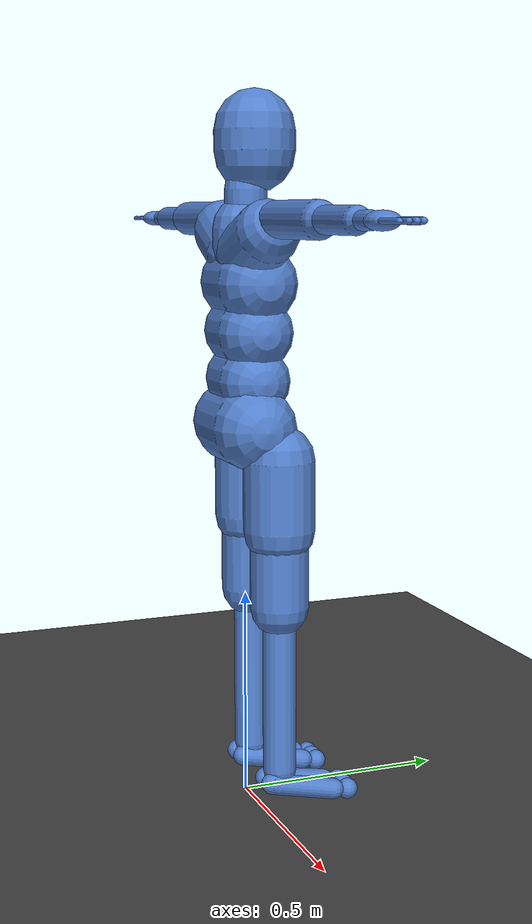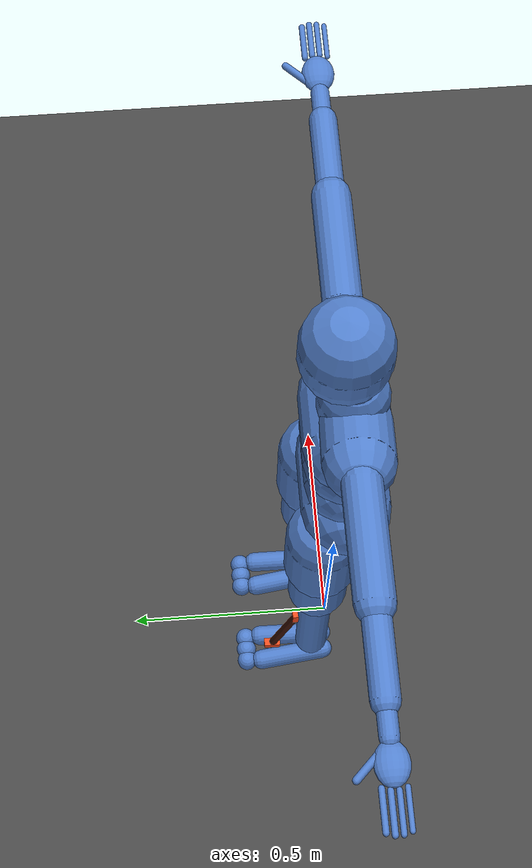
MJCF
<!--
The model definition MJCF file for the ankle exo challenge. This defines the humanoid, the actuators and sensors and
their names.
-->

<mujoco>
  <actuator>
    <motor name="exo"  gear="-50" ctrlrange="0 1" ctrllimited="true" tendon="exo"/>
    <motor name="param_1"  gear="0" ctrlrange="0 1" ctrllimited="true" tendon="exo" group="1"/>
    <motor name="param_2"  gear="0" ctrlrange="-0.5 1" ctrllimited="true" tendon="exo" group="1"/>
    <motor name="param_3"  gear="0" ctrlrange="0 1" ctrllimited="true" tendon="exo" group="1"/>
  </actuator>

  <!-- You can reserve space in the data structure for your own logic that will be passed along from frame
   to frame. By default we'll use it to keep track of the reward function and smooth it out. -->
  <size nuserdata="1" />

  <sensor>
    <accelerometer site="lfootIMU" noise="0" cutoff="0" name="lfootACC" />
    <accelerometer site="ltibiaIMU" noise="0" cutoff="0" name="ltibiaACC" />
    <gyro site="ltibiaIMU" noise="0" cutoff="0" name="ltibiaGYR" />
    <gyro site="lfootIMU" noise="0" cutoff="0" name="lfootGYR" />

    <!-- The contact force at the toes, we'll use this in our reward function to penalize tripping. -->
    <touch site="ltoesite" noise="0" cutoff="0" name="ltoeForce" />
  </sensor>

  <worldbody>
    <!-- The ankle joint is on the left side, called "lfootrx" -->
    <body pos="0 0 0.963" quat="-1 0 0 0" name="root">
      <body pos="0 0 0" quat="0 0 0.7071068 0.7071068" name="lhipjoint">
        <geom density="10" type="capsule" size="0.008000004 0.02187361" pos="0.05096853 -0.04590369 0.02472301" quat="0.5708001 -0.5666021 -0.5942641 0" priority="0" contype="0" conaffinity="0" group="2" condim="1" solmix="1" solref="0.015 1" solimp="0.99 0.99 0.003" margin="0" gap="0" friction="0.7 0.005 0.0001" name="lhipjoint" />
        <body pos="0.1019371 -0.09180744 0.04944616" quat="-1 0 0 0" name="lfemur">
          <joint type="ball" pos="0 0 0" armature="0.005" springref="0" springdamper="0 0" damping="20" stiffness="0" solreflimit="0.02 1" solimplimit="0.9 0.95 0.001 0.5 2" solreffriction="0.02 1" solimpfriction="0.9 0.95 0.001 0.5 2" frictionloss="0" limited="true" margin="0" range="0 137.51" name="lfemurr" />
          <geom density="0" type="capsule" size="0.08500003 0.083" pos="0 -0.115473 3.61172E-08" quat="0.6963643 -0.6963643 -0.1227881 -0.1227881" priority="0" contype="0" conaffinity="0" group="2" condim="1" solmix="1" solref="0.015 1" solimp="0.99 0.99 0.003" margin="0" gap="0" friction="0.7 0.005 0.0001" name="lfemur_upper" />
          <geom density="1000" type="capsule" size="0.07000002 0.182226" pos="0 -0.2024731 4.648841E-08" quat="0.6963643 -0.6963643 -0.1227881 -0.1227881" priority="0" contype="0" conaffinity="0" group="2" condim="1" solmix="1" solref="0.015 1" solimp="0.99 0.99 0.003" margin="0" gap="0" friction="0.7 0.005 0.0001" name="lfemur" />
          <body pos="0 -0.4049452 1.302296E-07" quat="-1 0 0 0" name="ltibia">
            <body name="tibiaIMU_body" pos="0 -0.194 0.04300001" quat="0 0 -0.7071069 -0.7071069">
                <joint type="slide" stiffness="1" damping="20" axis="1 0 0"/>
                <joint type="slide" stiffness="1" damping="20" axis="0 1 0"/>
                <joint type="slide" stiffness="1" damping="20" axis="0 0 1"/>
                <inertial mass="0.002" diaginertia="0.001 0.001 0.001" pos="0 0 0" />
                <site type="box" size="0.01 0.01000001 0.02000001"  rgba="1 0.3 0.12 0" name="ltibiaIMU" />
            </body>
            <site type="box" size="0.01000002 0.01000001 0.02000001" pos="0 -0.194 0.04300001" quat="0 0 -0.7071069 -0.7071069" rgba="1 0.3 0.12 1" name="ltibiaTendon" />
            <joint type="hinge" pos="0 0 0" axis="1 0 0" ref="0" armature="0.05" springref="0" springdamper="0 0" damping="40" stiffness="0" solreflimit="0.02 1" solimplimit="0 0.99 0.01 0.5 2" solreffriction="0.02 1" solimpfriction="0.9 0.95 0.001 0.5 2" frictionloss="0" limited="true" margin="0" range="0.5729578 170" name="ltibiarx" />
            <geom density="1000" type="capsule" size="0.04000001 0.182561" pos="0 -0.2028461 2.418113E-08" quat="0.6963643 -0.6963643 -0.1227881 -0.1227881" priority="0" contype="0" conaffinity="0" group="2" condim="1" solmix="1" solref="0.015 1" solimp="0.99 0.99 0.003" margin="0" gap="0" friction="0.7 0.005 0.0001" name="ltibia" />
            <body pos="0 -0.4156931 1.091591E-07" quat="0.7071069 -0.7071069 0 0" name="lfoot">
              <body name="footIMU_body" pos="0 -0.1 0.01" quat="0 0 -0.7071069 -0.7071069">
                <joint type="slide" stiffness="1" damping="20" axis="1 0 0"/>
                <joint type="slide" stiffness="1" damping="20" axis="0 1 0"/>
                <joint type="slide" stiffness="1" damping="20" axis="0 0 1"/>
                <inertial mass="0.001" diaginertia="0.001 0.001 0.001" pos="0 0 0" />
                <site type="box" size="0.01000002 0.01000001 0.02000001"  rgba="1 0.3 0.12 0" name="lfootIMU"  />
              </body>
              <site type="box" size="0.01000002 0.01000001 0.02000001"  rgba="1 0.3 0.12 1" pos="0 -0.1 0.01" quat="0 0 -0.7071069 -0.7071069" name="lfootTendon"  />
              <joint type="hinge" pos="0 0 0" axis="1 0 0" ref="0" armature="0.005" springref="30" springdamper="0 0" damping="0.2" stiffness="1.5" solreflimit="0.02 1" solimplimit="0 0.99 0.01 0.5 2" solreffriction="0.02 1" solimpfriction="0.9 0.95 0.001 0.5 2" frictionloss="0.2" limited="true" margin="0" range="-44.99999 30" name="lfootrx" />
              <geom density="1000" type="capsule" size="0.02500003 0.08000004" pos="-0.02700003 -0.04999997 -0.01138771" quat="0.7672563 -0.6405111 0.02306491 -0.02306581" priority="0" contype="1" conaffinity="1" group="2" condim="3" solmix="1" solref="0.1 1" solimp="0.98 0.98 0.002" margin="0" gap="0" friction="1 0.005 0.0001" name="lfoot" />
              <geom density="1000" type="capsule" size="0.02500003 0.08000004" pos="0.02700002 -0.04999997 -0.01138771" quat="0.7288731 -0.5939951 -0.240743 -0.240743" priority="0" contype="1" conaffinity="1" group="2" condim="3" solmix="1" solref="0.1 1" solimp="0.98 0.98 0.002" margin="0" gap="0" friction="1 0.005 0.0001" name="lfoot_ch" />
              <body pos="0 -0.1563721 -0.02277565" quat="-1 0 0 0" name="ltoes">

                <site type="sphere" size="0.07000005" pos="0 -0.03280033 5.960464E-08" quat="-1 0 0 0" name="ltoesite" rgba="0 0 0 0" />
                <joint type="hinge" pos="0 0 0" axis="1 0 0" ref="0" armature="0.005" springref="0" springdamper="0 0" damping="20" stiffness="0" solreflimit="0.02 1" solimplimit="0 0.99 0.01 0.5 2" solreffriction="0.02 1" solimpfriction="0.9 0.95 0.001 0.5 2" frictionloss="0" limited="true" margin="0" range="-90.00021 20.00001" name="ltoesrx" />
                <geom density="3000" type="sphere" size="0.02500002" pos="0 -0.009999995 -0.00999999" quat="-1 0 0 0" priority="30" contype="1" conaffinity="1" group="2" condim="6" solmix="1" solref="-300 -50" solimp="0.80 0.98 0.01" margin="0" gap="0" friction="1 0.005 0.0001" name="ltoes0" />
                <geom density="3000" type="sphere" size="0.02500002" pos="0.03000001 -0.009999995 -0.00999999" quat="-1 0 0 0" priority="30" contype="1" conaffinity="1" group="2" condim="6" solmix="1" solref="-300 -50" solimp="0.80 0.98 0.01" margin="0" gap="0" friction="1 0.005 0.0001" name="ltoes1" />
                <geom density="3000" type="sphere" size="0.02500002" pos="-0.03000003 -0.009999995 -0.00999999" quat="-1 0 0 0" priority="30" contype="1" conaffinity="1" group="2" condim="6" solmix="1" solref="-300 -50" solimp="0.80 0.98 0.01" margin="0" gap="0" friction="1 0.005 0.0001" name="ltoes2" />
              </body>
            </body>
          </body>
        </body>
      </body>
      <body pos="0 0 0" quat="0 0 0.7071068 0.7071068" name="rhipjoint">
        <geom density="10" type="capsule" size="0.008000002 0.02187361" pos="-0.05096853 -0.04590369 0.02472301" quat="0.5748562 -0.5475942 0.6080142 0" priority="0" contype="0" conaffinity="0" group="2" condim="1" solmix="1" solref="0.015 1" solimp="0.99 0.99 0.003" margin="0" gap="0" friction="0.7 0.005 0.0001" name="rhipjoint" />
        <body pos="-0.1019371 -0.09180744 0.04944613" quat="-1 0 0 0" name="rfemur">
          <joint type="ball" pos="0 0 0" armature="0.005" springref="0" springdamper="0 0" damping="20" stiffness="0" solreflimit="0.02 1" solimplimit="0.9 0.95 0.001 0.5 2" solreffriction="0.02 1" solimpfriction="0.9 0.95 0.001 0.5 2" frictionloss="0" limited="true" margin="0" range="0 137.51" name="rfemurr" />
          <geom density="0" type="capsule" size="0.08500003 0.083" pos="0 -0.115473 3.61172E-08" quat="0.6963643 -0.6963643 0.1227881 0.1227881" priority="0" contype="0" conaffinity="0" group="2" condim="1" solmix="1" solref="0.015 1" solimp="0.99 0.99 0.003" margin="0" gap="0" friction="0.7 0.005 0.0001" name="rfemur_upper" />
          <geom density="1000" type="capsule" size="0.07000002 0.182226" pos="0 -0.2024731 4.648841E-08" quat="0.6963643 -0.6963643 0.1227881 0.1227881" priority="0" contype="0" conaffinity="0" group="2" condim="1" solmix="1" solref="0.015 1" solimp="0.99 0.99 0.003" margin="0" gap="0" friction="0.7 0.005 0.0001" name="rfemur" />
          <body pos="0 -0.4049451 1.004273E-07" quat="-1 0 0 0" name="rtibia">
            <joint type="hinge" pos="0 0 0" axis="1 0 0" ref="0" armature="0.005" springref="0" springdamper="0 0" damping="20" stiffness="0" solreflimit="0.02 1" solimplimit="0 0.99 0.01 0.5 2" solreffriction="0.02 1" solimpfriction="0.9 0.95 0.001 0.5 2" frictionloss="0" limited="true" margin="0" range="0.5729578 170" name="rtibiarx" />
            <geom density="1000" type="capsule" size="0.04000001 0.182561" pos="0 -0.2028461 2.418113E-08" quat="0.6963643 -0.6963643 0.1227881 0.1227881" priority="0" contype="0" conaffinity="0" group="2" condim="1" solmix="1" solref="0.015 1" solimp="0.99 0.99 0.003" margin="0" gap="0" friction="0.7 0.005 0.0001" name="rtibia" />
            <body pos="0 -0.4156932 1.091591E-07" quat="0.7071069 -0.7071069 0 0" name="rfoot">
              <joint type="hinge" pos="0 0 0" axis="-4.768369E-07 0 1" ref="0" armature="0.005" springref="0" springdamper="0 0" damping="20" stiffness="0" solreflimit="0.02 1" solimplimit="0 0.99 0.01 0.5 2" solreffriction="0.02 1" solimpfriction="0.9 0.95 0.001 0.5 2" frictionloss="0" limited="true" margin="0" range="-20.00001 69.99997" name="rfootrz" />
              <joint type="hinge" pos="0 0 0" axis="1 0 0" ref="0" armature="0.005" springref="0" springdamper="0 0" damping="20" stiffness="0" solreflimit="0.02 1" solimplimit="0 0.99 0.01 0.5 2" solreffriction="0.02 1" solimpfriction="0.9 0.95 0.001 0.5 2" frictionloss="0" limited="true" margin="0" range="-44.99999 45.83662" name="rfootrx" />
              <geom density="1000" type="capsule" size="0.02500002 0.08000004" pos="-0.02700002 -0.05000003 -0.01138777" quat="0.7352074 -0.5863352 0.2405011 0.2405011" priority="0" contype="0" conaffinity="0" group="2" condim="3" solmix="1" solref="0.015 1" solimp="0.98 0.98 0.001" margin="0" gap="0" friction="1 0.005 0.0001" name="rfoot" />
              <geom density="1000" type="capsule" size="0.02500002 0.08000002" pos="0.02700003 -0.05000003 -0.01138777" quat="0.7731252 -0.6332311 -0.02545851 0.02545841" priority="0" contype="0" conaffinity="0" group="2" condim="3" solmix="1" solref="0.015 1" solimp="0.98 0.98 0.001" margin="0" gap="0" friction="1 0.005 0.0001" name="rfoot_ch" />
              <body pos="0 -0.1563721 -0.02277559" quat="-1 0 0 0" name="rtoes">
                <joint type="hinge" pos="0 0 0" axis="1 0 0" ref="0" armature="0.005" springref="0" springdamper="0 0" damping="20" stiffness="0" solreflimit="0.02 1" solimplimit="0 0.99 0.01 0.5 2" solreffriction="0.02 1" solimpfriction="0.9 0.95 0.001 0.5 2" frictionloss="0" limited="true" margin="0" range="-90.00021 20.00001" name="rtoesrx" />
                <geom density="1000" type="sphere" size="0.02500002" pos="0 -0.009999995 -0.00999999" quat="-1 0 0 0" priority="0" contype="0" conaffinity="0" group="2" condim="3" solmix="1" solref="0.015 1" solimp="0.98 0.98 0.001" margin="0" gap="0" friction="1 0.005 0.0001" name="rtoes0" />
                <geom density="1000" type="sphere" size="0.02500002" pos="0.03000003 -0.009999995 -0.00999999" quat="-1 0 0 0" priority="0" contype="0" conaffinity="0" group="2" condim="3" solmix="1" solref="0.015 1" solimp="0.98 0.98 0.001" margin="0" gap="0" friction="1 0.005 0.0001" name="rtoes1" />
                <geom density="1000" type="sphere" size="0.02500002" pos="-0.03000001 -0.009999995 -0.00999999" quat="-1 0 0 0" priority="0" contype="0" conaffinity="0" group="2" condim="3" solmix="1" solref="0.015 1" solimp="0.98 0.98 0.001" margin="0" gap="0" friction="1 0.005 0.0001" name="rtoes2" />
              </body>
            </body>
          </body>
        </body>
      </body>
      <freejoint name="freejoint" />
      <geom density="1000" type="capsule" size="0.1 0.07" pos="0 0 -0.05000001" quat="-0.5 -0.5 -0.5 -0.5" priority="0" contype="0" conaffinity="0" group="2" condim="1" solmix="1" solref="0.015 1" solimp="0.99 0.99 0.003" margin="0" gap="0" friction="0.7 0.005 0.0001" name="root_geom" />
      <body pos="0 0 0" quat="0 0 0.7071068 0.7071068" name="lowerback">
        <joint type="ball" pos="0 0 0" armature="0.005" springref="0" springdamper="0 0" damping="80" stiffness="5" solreflimit="0.02 1" solimplimit="0.9 0.95 0.001 0.5 2" solreffriction="0.02 1" solimpfriction="0.9 0.95 0.001 0.5 2" frictionloss="0" limited="true" margin="0" range="0 37.24227" name="lowerbackr" />
        <geom density="1000" type="capsule" size="0.08500004 0.04540022" pos="0.002829311 0.05660648 0.009999989" quat="0.7071069 0 0.7071069 0" priority="0" contype="0" conaffinity="0" group="2" condim="1" solmix="1" solref="0.015 1" solimp="0.99 0.99 0.003" margin="0" gap="0" friction="0.7 0.005 0.0001" name="lowerback" />
        <body pos="0.0005658622 0.113213 -0.008053012" quat="-1 0 0 0" name="upperback">
          <joint type="hinge" pos="0 0 0" axis="-3.576278E-07 0 1" ref="0" armature="0.005" springref="0" springdamper="0 0" damping="80" stiffness="5" solreflimit="0.02 1" solimplimit="0 0.99 0.01 0.5 2" solreffriction="0.02 1" solimpfriction="0.9 0.95 0.001 0.5 2" frictionloss="0" limited="true" margin="0" range="-30.00002 30.00002" name="upperbackrz" />
          <joint type="hinge" pos="0 0 0" axis="-3.576278E-07 1 0" ref="0" armature="0.005" springref="0" springdamper="0 0" damping="80" stiffness="5" solreflimit="0.02 1" solimplimit="0 0.99 0.01 0.5 2" solreffriction="0.02 1" solimpfriction="0.9 0.95 0.001 0.5 2" frictionloss="0" limited="true" margin="0" range="-30.00002 30.00002" name="upperbackry" />
          <geom density="1000" type="capsule" size="0.09000005 0.04542623" pos="0.0002562642 0.05678022 0.02" quat="0.7071069 0 0.7071069 0" priority="0" contype="0" conaffinity="0" group="2" condim="1" solmix="1" solref="0.015 1" solimp="0.99 0.99 0.003" margin="0" gap="0" friction="0.7 0.005 0.0001" name="upperback" />
          <body pos="0.0005125283 0.1135601 0.0009368002" quat="-1 0 0 0" name="thorax">
            <joint type="ball" pos="0 0 0" armature="0.005" springref="0" springdamper="0 0" damping="80" stiffness="0" solreflimit="0.02 1" solimplimit="0.9 0.95 0.001 0.5 2" solreffriction="0.02 1" solimpfriction="0.9 0.95 0.001 0.5 2" frictionloss="0" limited="true" margin="0" range="0 37.24227" name="thoraxr" />
            <geom density="1000" type="capsule" size="0.09500004 0.05702063" pos="0 0.05697251 0.01999999" quat="0.7071069 0 0.7071069 0" priority="0" contype="0" conaffinity="0" group="2" condim="1" solmix="1" solref="0.015 1" solimp="0.99 0.99 0.003" margin="0" gap="0" friction="0.7 0.005 0.0001" name="thorax" />
            <body pos="0 0.113945 0.004680337" quat="-1 0 0 0" name="lowerneck">
              <joint type="ball" pos="0 0 0" armature="0.005" springref="0" springdamper="0 0" damping="80" stiffness="5" solreflimit="0.02 1" solimplimit="0.9 0.95 0.001 0.5 2" solreffriction="0.02 1" solimpfriction="0.9 0.95 0.001 0.5 2" frictionloss="0" limited="true" margin="0" range="0 30.0803" name="lowerneckr" />
              <geom density="500" type="capsule" size="0.07500006 0.02279232" pos="-0.001650711 0.04524005 0.005343582" quat="0.7071069 0.7071069 0 0" priority="0" contype="0" conaffinity="0" group="2" condim="1" solmix="1" solref="0.015 1" solimp="0.99 0.99 0.003" margin="0" gap="0" friction="0.7 0.005 0.0001" name="lowerneck" />
              <body pos="-0.003301431 0.0904801 0.01068716" quat="-1 0 0 0" name="upperneck">
                <joint type="ball" pos="0 0 0" armature="0.005" springref="0" springdamper="0 0" damping="80" stiffness="5" solreflimit="0.02 1" solimplimit="0.9 0.95 0.001 0.5 2" solreffriction="0.02 1" solimpfriction="0.9 0.95 0.001 0.5 2" frictionloss="0" limited="true" margin="0" range="0 30.0803" name="upperneckr" />
                <geom density="500" type="capsule" size="0.05000004 0.02252722" pos="0.0005008752 0.04499555 -0.002246445" quat="0.7071069 0.7071069 0 0" priority="0" contype="0" conaffinity="0" group="2" condim="1" solmix="1" solref="0.015 1" solimp="0.99 0.99 0.003" margin="0" gap="0" friction="0.7 0.005 0.0001" name="upperneck" />
                <body pos="0.001001751 0.13 -0.004492865" quat="-1 0 0 0" name="head">
                  <joint type="ball" pos="0 0 0" armature="0.005" springref="0" springdamper="0 0" damping="80" stiffness="0" solreflimit="0.02 1" solimplimit="0.9 0.95 0.001 0.5 2" solreffriction="0.02 1" solimpfriction="0.9 0.95 0.001 0.5 2" frictionloss="0" limited="true" margin="0" range="0 0.525" name="headr" />
                  <geom density="800" type="capsule" size="0.09500007 0.02410402" pos="0.0003414648 0.04818404 0.02499997" quat="0.7071069 0.7071069 0 0" priority="0" contype="0" conaffinity="0" group="2" condim="1" solmix="1" solref="0.015 1" solimp="0.99 0.99 0.003" margin="0" gap="0" friction="0.7 0.005 0.0001" name="head" />
                </body>
              </body>
            </body>
            <body pos="0 0.113945 0.004680337" quat="-1 0 0 0" name="lclavicle">
              <joint type="hinge" pos="0 0 0" axis="-3.576278E-07 0 1" ref="0" armature="0.005" springref="0" springdamper="0 0" damping="20" stiffness="0" solreflimit="0.02 1" solimplimit="0 0.99 0.01 0.5 2" solreffriction="0.02 1" solimpfriction="0.9 0.95 0.001 0.5 2" frictionloss="0" limited="true" margin="0" range="-20.00001 0" name="lclaviclerz" />
              <joint type="hinge" pos="0 0 0" axis="-3.576278E-07 1 0" ref="0" armature="0.005" springref="0" springdamper="0 0" damping="20" stiffness="0" solreflimit="0.02 1" solimplimit="0 0.99 0.01 0.5 2" solreffriction="0.02 1" solimpfriction="0.9 0.95 0.001 0.5 2" frictionloss="0" limited="true" margin="0" range="-10 20" name="lclaviclery" />
              <geom density="500" type="capsule" size="0.07500002 0.06000001" pos="0.09188174 0.03826356 0.005357023" quat="0.6879708 0.2789879 -0.6699718 0" priority="0" contype="0" conaffinity="0" group="2" condim="1" solmix="1" solref="0.015 1" solimp="0.99 0.99 0.003" margin="0" gap="0" friction="0.7 0.005 0.0001" name="lclavicle" />
              <body pos="0.1800001 0.08999992 0.01071407" quat="0.1830129 0.6830128 -0.6830128 0.1830129" name="lhumerus">
                <joint type="ball" pos="0 0 0" armature="0.005" springref="0" springdamper="0 0" damping="20" stiffness="0" solreflimit="0.02 1" solimplimit="0.9 0.95 0.001 0.5 2" solreffriction="0.02 1" solimpfriction="0.9 0.95 0.001 0.5 2" frictionloss="0" limited="true" margin="0" range="0 120" name="lhumerusr" />
                <geom density="1000" type="capsule" size="0.04200003 0.124579" pos="-5.579768E-08 -0.1384211 -5.960476E-08" quat="0.6123727 -0.6123727 0.3535535 0.3535534" priority="0" contype="0" conaffinity="0" group="2" condim="1" solmix="1" solref="0.015 1" solimp="0.99 0.99 0.003" margin="0" gap="0" friction="0.7 0.005 0.0001" name="lhumerus" />
                <body pos="-8.356723E-09 -0.2768433 -5.960476E-08" quat="-1 0 0 0" name="lradius">
                  <joint type="hinge" pos="0 0 0" axis="0.8660252 0 0.5000002" ref="0" armature="0.005" springref="0" springdamper="0 0" damping="20" stiffness="0" solreflimit="0.02 1" solimplimit="0 0.99 0.01 0.5 2" solreffriction="0.02 1" solimpfriction="0.9 0.95 0.001 0.5 2" frictionloss="0" limited="true" margin="0" range="-10 170" name="lradiusrx" />
                  <geom density="1000" type="capsule" size="0.03000001 0.08169114" pos="3.11086E-08 -0.09076798 0" quat="0.6123727 -0.6123727 0.3535535 0.3535534" priority="0" contype="0" conaffinity="0" group="2" condim="1" solmix="1" solref="0.015 1" solimp="0.99 0.99 0.003" margin="0" gap="0" friction="0.7 0.005 0.0001" name="lradius" />
                  <body pos="-4.102102E-08 -0.1815361 -5.960476E-08" quat="-0.5000005 0 0.8660256 0" name="lwrist">
                    <geom density="1000" type="capsule" size="0.02000002 0.03000002" pos="1.430511E-08 -0.02999999 0" quat="-8.108592E-09 -5.511171E-08 -0.7071072 -0.7071072" priority="0" contype="0" conaffinity="0" group="2" condim="1" solmix="1" solref="0.015 1" solimp="0.99 0.99 0.003" margin="0" gap="0" friction="0.7 0.005 0.0001" name="lwrist" />
                    <body pos="4.328137E-08 -0.09076761 0" quat="-1 0 0 0" name="lhand">
                      <geom density="1000" type="ellipsoid" size="0.03500004 0.02000002 0.04500004" pos="7.987984E-09 -0.01675201 0" quat="-8.108592E-09 -5.511171E-08 -0.7071072 -0.7071072" priority="0" contype="0" conaffinity="0" group="2" condim="3" solmix="1" solref="0.015 1" solimp="0.98 0.98 0.001" margin="0" gap="0" friction="1 0.005 0.0001" name="lhand" />
                      <body pos="3.576289E-08 -0.0750002 0" quat="-1 0 0 0" name="lfingers">
                        <geom density="1000" type="capsule" size="0.006500005 0.04000004" pos="-0.02400002 -0.02500006 -2.629966E-08" quat="0.7071072 -0.7071072 7.618512E-08 -2.918201E-08" priority="0" contype="0" conaffinity="0" group="2" condim="3" solmix="1" solref="0.015 1" solimp="0.98 0.98 0.001" margin="0" gap="0" friction="1 0.005 0.0001" name="lfinger0" />
                        <geom density="1000" type="capsule" size="0.006500005 0.04000004" pos="-0.008000006 -0.03000005 -8.766564E-09" quat="0.7071072 -0.7071072 7.618512E-08 -2.918201E-08" priority="0" contype="0" conaffinity="0" group="2" condim="3" solmix="1" solref="0.015 1" solimp="0.98 0.98 0.001" margin="0" gap="0" friction="1 0.005 0.0001" name="lfinger1" />
                        <geom density="1000" type="capsule" size="0.006000004 0.04000004" pos="0.008000004 -0.03000004 8.766532E-09" quat="0.7071072 -0.7071072 7.618512E-08 -2.918201E-08" priority="0" contype="0" conaffinity="0" group="2" condim="3" solmix="1" solref="0.015 1" solimp="0.98 0.98 0.001" margin="0" gap="0" friction="1 0.005 0.0001" name="lfinger2" />
                        <geom density="1000" type="capsule" size="0.005500004 0.04000004" pos="0.02400004 -0.02500004 2.629966E-08" quat="0.7071072 -0.7071072 7.618512E-08 -2.918201E-08" priority="0" contype="0" conaffinity="0" group="2" condim="3" solmix="1" solref="0.015 1" solimp="0.98 0.98 0.001" margin="0" gap="0" friction="1 0.005 0.0001" name="lfinger3" />
                      </body>
                      <body pos="-0.02500002 -1.192094E-08 -2.739547E-08" quat="0.9238802 -1.159555E-08 -1.097658E-08 -0.3826831" name="lthumb">
                        <geom density="1000" type="capsule" size="0.008000006 0.03000002" pos="8.00791E-08 -0.03000013 -1.428458E-07" quat="4.502673E-09 -1.725909E-08 -0.7071071 -0.7071071" priority="0" contype="0" conaffinity="0" group="2" condim="3" solmix="1" solref="0.015 1" solimp="0.98 0.98 0.001" margin="0" gap="0" friction="1 0.005 0.0001" name="lthumb" />
                      </body>
                    </body>
                  </body>
                </body>
              </body>
            </body>
            <body pos="0 0.113945 0.004680337" quat="-1 0 0 0" name="rclavicle">
              <joint type="hinge" pos="0 0 0" axis="-3.576278E-07 0 1" ref="0" armature="0.005" springref="0" springdamper="0 0" damping="20" stiffness="0" solreflimit="0.02 1" solimplimit="0 0.99 0.01 0.5 2" solreffriction="0.02 1" solimpfriction="0.9 0.95 0.001 0.5 2" frictionloss="0" limited="true" margin="0" range="0 20.00001" name="rclaviclerz" />
              <joint type="hinge" pos="0 0 0" axis="-3.576278E-07 1 0" ref="0" armature="0.005" springref="0" springdamper="0 0" damping="20" stiffness="0" solreflimit="0.02 1" solimplimit="0 0.99 0.01 0.5 2" solreffriction="0.02 1" solimpfriction="0.9 0.95 0.001 0.5 2" frictionloss="0" limited="true" margin="0" range="-20.00001 10" name="rclaviclery" />
              <geom density="500" type="capsule" size="0.07500002 0.06000001" pos="-0.09188174 0.03826356 0.005357023" quat="0.6879708 0.2789879 0.6699718 0" priority="0" contype="0" conaffinity="0" group="2" condim="1" solmix="1" solref="0.015 1" solimp="0.99 0.99 0.003" margin="0" gap="0" friction="0.7 0.005 0.0001" name="rclavicle" />
              <body pos="-0.1800001 0.08999992 0.01071407" quat="0.1830129 0.6830128 0.6830128 -0.1830129" name="rhumerus">
                <joint type="ball" pos="0 0 0" armature="0.005" springref="0" springdamper="0 0" damping="20" stiffness="0" solreflimit="0.02 1" solimplimit="0.9 0.95 0.001 0.5 2" solreffriction="0.02 1" solimpfriction="0.9 0.95 0.001 0.5 2" frictionloss="0" limited="true" margin="0" range="0 120" name="rhumerusr" />
                <geom density="1000" type="capsule" size="0.04200003 0.124579" pos="5.579769E-08 -0.1384211 -5.960476E-08" quat="0.6123727 -0.6123727 -0.3535535 -0.3535534" priority="0" contype="0" conaffinity="0" group="2" condim="1" solmix="1" solref="0.015 1" solimp="0.99 0.99 0.003" margin="0" gap="0" friction="0.7 0.005 0.0001" name="rhumerus" />
                <body pos="8.356744E-09 -0.2768432 -5.960476E-08" quat="-1 0 0 0" name="rradius">
                  <joint type="hinge" pos="0 0 0" axis="0.8660253 0 -0.5000001" ref="0" armature="0.005" springref="0" springdamper="0 0" damping="20" stiffness="0" solreflimit="0.02 1" solimplimit="0 0.99 0.01 0.5 2" solreffriction="0.02 1" solimpfriction="0.9 0.95 0.001 0.5 2" frictionloss="0" limited="true" margin="0" range="-10 170" name="rradiusrx" />
                  <geom density="1000" type="capsule" size="0.03000002 0.08169118" pos="-3.110858E-08 -0.09076792 0" quat="0.6123802 -0.6123722 -0.3535542 -0.3535411" priority="0" contype="0" conaffinity="0" group="2" condim="1" solmix="1" solref="0.015 1" solimp="0.99 0.99 0.003" margin="0" gap="0" friction="0.7 0.005 0.0001" name="rradius" />
                  <body pos="4.102105E-08 -0.181536 -5.960476E-08" quat="-0.5000005 0 -0.8660256 0" name="rwrist">
                    <geom density="1000" type="capsule" size="0.02000002 0.03000002" pos="-1.430511E-08 -0.02999999 0" quat="-8.108592E-09 -5.511171E-08 0.7071072 0.7071072" priority="0" contype="0" conaffinity="0" group="2" condim="1" solmix="1" solref="0.015 1" solimp="0.99 0.99 0.003" margin="0" gap="0" friction="0.7 0.005 0.0001" name="rwrist" />
                    <body pos="-4.328137E-08 -0.09076761 0" quat="-1 0 0 0" name="rhand">
                      <geom density="1000" type="ellipsoid" size="0.03500004 0.02000002 0.04500004" pos="-7.987984E-09 -0.01675201 0" quat="-8.108592E-09 -5.511171E-08 0.7071072 0.7071072" priority="0" contype="0" conaffinity="0" group="2" condim="3" solmix="1" solref="0.015 1" solimp="0.98 0.98 0.001" margin="0" gap="0" friction="1 0.005 0.0001" name="rhand" />
                      <body pos="-3.576289E-08 -0.0750002 0" quat="-1 0 0 0" name="rfingers">
                        <geom density="1000" type="capsule" size="0.006500005 0.04000004" pos="0.02400002 -0.02500006 -2.629966E-08" quat="0.7071072 -0.7071072 -7.618512E-08 2.918201E-08" priority="0" contype="0" conaffinity="0" group="2" condim="3" solmix="1" solref="0.015 1" solimp="0.98 0.98 0.001" margin="0" gap="0" friction="1 0.005 0.0001" name="rfinger0" />
                        <geom density="1000" type="capsule" size="0.006500005 0.04000004" pos="0.008000006 -0.03000005 -8.766564E-09" quat="0.7071072 -0.7071072 -7.618512E-08 2.918201E-08" priority="0" contype="0" conaffinity="0" group="2" condim="3" solmix="1" solref="0.015 1" solimp="0.98 0.98 0.001" margin="0" gap="0" friction="1 0.005 0.0001" name="rfinger1" />
                        <geom density="1000" type="capsule" size="0.006000004 0.04000004" pos="-0.008000004 -0.03000004 8.766532E-09" quat="0.7071072 -0.7071072 -7.618512E-08 2.918201E-08" priority="0" contype="0" conaffinity="0" group="2" condim="3" solmix="1" solref="0.015 1" solimp="0.98 0.98 0.001" margin="0" gap="0" friction="1 0.005 0.0001" name="rfinger2" />
                        <geom density="1000" type="capsule" size="0.005500004 0.04000004" pos="-0.02400004 -0.02500004 2.629966E-08" quat="0.7071072 -0.7071072 -7.618512E-08 2.918201E-08" priority="0" contype="0" conaffinity="0" group="2" condim="3" solmix="1" solref="0.015 1" solimp="0.98 0.98 0.001" margin="0" gap="0" friction="1 0.005 0.0001" name="rfinger3" />
                      </body>
                      <body pos="0.02500002 -1.192094E-08 -2.739547E-08" quat="0.9238802 -1.159555E-08 1.097658E-08 0.3826831" name="rthumb">
                        <geom density="1000" type="capsule" size="0.008000006 0.03000002" pos="4.214583E-09 -0.03000004 -1.428458E-07" quat="4.502673E-09 -1.725909E-08 0.7071071 0.7071071" priority="0" contype="0" conaffinity="0" group="2" condim="3" solmix="1" solref="0.015 1" solimp="0.98 0.98 0.001" margin="0" gap="0" friction="1 0.005 0.0001" name="rthumb" />
                      </body>
                    </body>
                  </body>
                </body>
              </body>
            </body>
          </body>
        </body>
      </body>
    </body>

  <!-- These two elements are necessary for clearer visualisation of spatial relationships. -->
    <body mocap="true" name="floor">
      <geom name="floor" pos="0 0 -0.01" size="0 0 1"  condim="1" friction="0 0 0" type="plane" material="matplane" priority="3" solref="0.2 5" solimp="0.1 0.98 0.1" rgba="0.5 0.5 0.5 1"/>
    </body>
    <light directional="true" diffuse=".8 .8 .8" specular=".2 .2 .2" pos="0 0 5" dir="0 0 -1"/>
  </worldbody>

  <tendon>
    <spatial name="exo" width="0.01" rgba="0.25 0.075 0.03 1">
      <site site="ltibiaTendon"/>
      <site site="lfootTendon"/>
    </spatial>
  </tendon>

  <default>
    <geom rgba="0.32 0.5 0.8 1" />
  </default>

  <compiler coordinate="local" />
  <option gravity="0 0 -9.81" timestep="0.005" impratio="1" magnetic="0 0 0" wind="0 0 0" density="0" viscosity="0" o_margin="0" o_solref="0.02 1" o_solimp="0.9 0.95 0.001 0.5 2" integrator="implicit" collision="all" cone="pyramidal" jacobian="auto" solver="Newton" iterations="100" tolerance="1E-08" noslip_iterations="0" noslip_tolerance="1E-06" mpr_iterations="50" mpr_tolerance="1E-06">
    <flag constraint="enable" equality="enable" frictionloss="enable" limit="enable" contact="enable" passive="enable" gravity="enable" clampctrl="enable" warmstart="enable" filterparent="enable" actuation="enable" refsafe="enable" override="disable" energy="disable" fwdinv="disable" sensornoise="disable" multiccd="disable" />
  </option>
  <asset>
    <texture type="skybox" builtin="gradient" rgb1="0.6 0.6 0.6" rgb2="0 0 0" width="512" height="512"/>
    <texture name="texplane" type="2d" builtin="checker" rgb1=".25 .25 .25" rgb2=".3 .3 .3" width="512" height="512" mark="cross" markrgb=".8 .8 .8"/>
    <material name="matplane" reflectance="0.3" texture="texplane" texrepeat="1 1" texuniform="true"/>
  </asset>

  <visual>
    <rgba haze=".3 .3 .3 1"/>
  </visual>
</mujoco>
